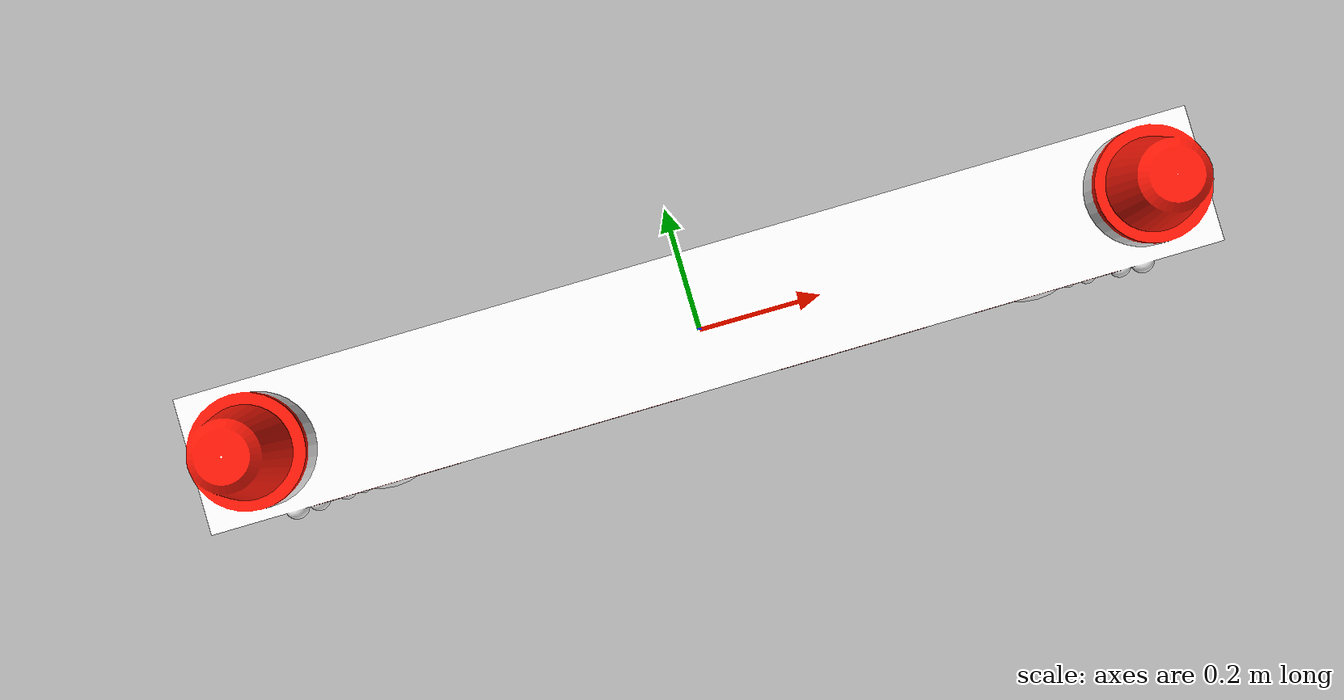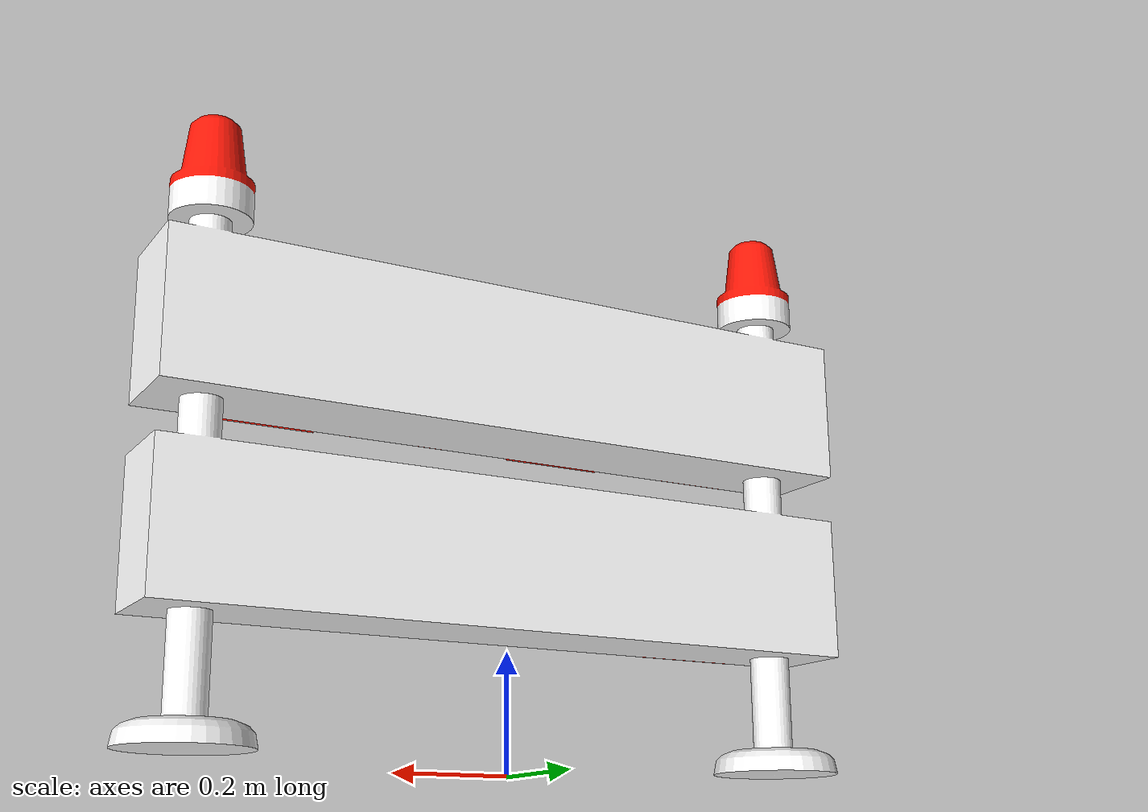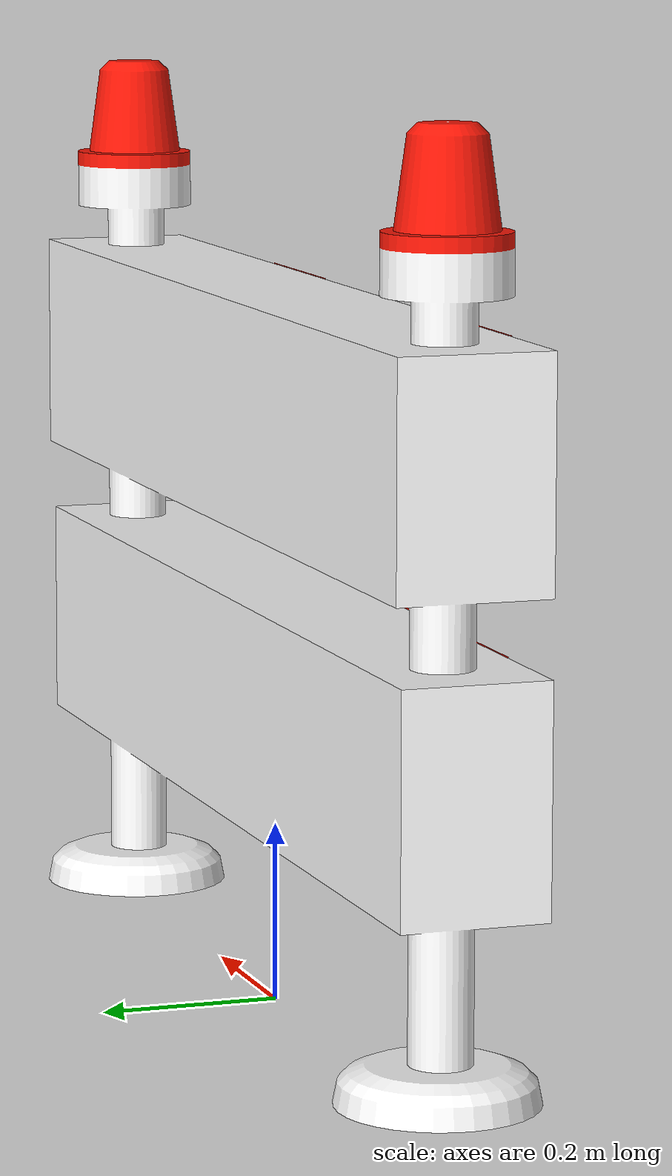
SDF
<?xml version="1.0" ?>
<sdf version="1.6">
  <model name="roadbarrier">
    <static>true</static>
    <link name="link">
      <collision name="collision">
        <pose>0 0 0 0 0 0</pose>
        <geometry>
          <mesh>
            <scale>1 1 1</scale>
            <uri>model://roadbarrier/meshes/roadbarrier.dae</uri>
          </mesh>
        </geometry>
      </collision>
      <visual name="visual">
        <pose>0 0 0 0 0 0</pose>
        <geometry>
          <mesh>
            <scale>1 1 1</scale>
            <uri>model://roadbarrier/meshes/roadbarrier.dae</uri>
          </mesh>
        </geometry>
      </visual>
    </link>
  </model>
</sdf>
